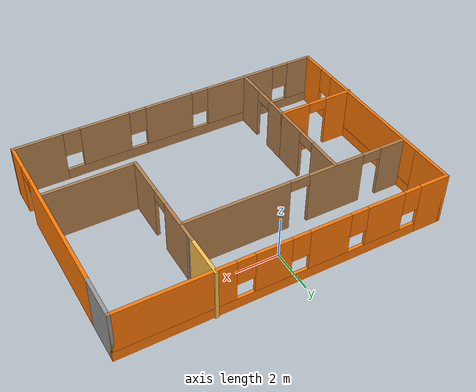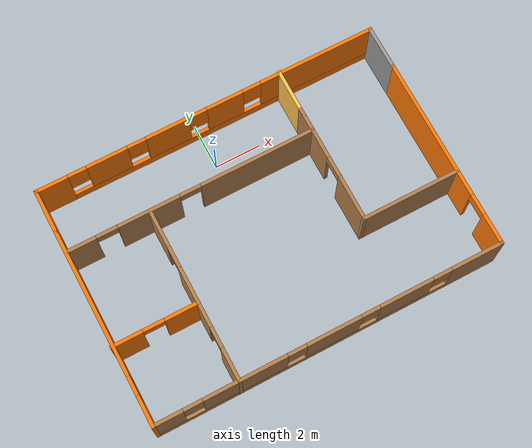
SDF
<?xml version='1.0'?>
<sdf version='1.7'>
  <model name='world_gs_myworld1'>
    <pose>0.436031 -3.56792 0 0 -0 0</pose>
    <link name='Wall_16'>
      <collision name='Wall_16_Collision'>
        <geometry>
          <box>
            <size>4.26521 0.15 2.5</size>
          </box>
        </geometry>
        <pose>0 0 1.25 0 -0 0</pose>
      </collision>
      <visual name='Wall_16_Visual'>
        <pose>0 0 1.25 0 -0 0</pose>
        <geometry>
          <box>
            <size>4.26521 0.15 2.5</size>
          </box>
        </geometry>
        <material>
          <script>
            <uri>file://media/materials/scripts/gazebo.material</uri>
            <name>Gazebo/Wood</name>
          </script>
          <ambient>1 0.764706 0.305882 1</ambient>
        </material>
        <meta>
          <layer>0</layer>
        </meta>
      </visual>
      <pose>5.35386 -1.81608 0 0 -0 3.14159</pose>
    </link>
    <link name='Wall_19'>
      <collision name='Wall_19_Collision'>
        <geometry>
          <box>
            <size>0.15 0.15 2.5</size>
          </box>
        </geometry>
        <pose>0 0 1.25 0 -0 0</pose>
      </collision>
      <visual name='Wall_19_Visual'>
        <pose>0 0 1.25 0 -0 0</pose>
        <geometry>
          <box>
            <size>0.15 0.15 2.5</size>
          </box>
        </geometry>
        <material>
          <script>
            <uri>file://media/materials/scripts/gazebo.material</uri>
            <name>Gazebo/Grey</name>
          </script>
          <ambient>1 1 1 1</ambient>
        </material>
        <meta>
          <layer>0</layer>
        </meta>
      </visual>
      <pose>3.29625 3.03391 0 0 -0 0</pose>
    </link>
    <link name='Wall_22'>
      <pose>3.29625 0.733915 0 0 -0 1.5708</pose>
      <visual name='Wall_22_Visual_0'>
        <pose>-1.61265 0 1.25 0 -0 0</pose>
        <geometry>
          <box>
            <size>2.0247 0.15 2.5</size>
          </box>
        </geometry>
        <material>
          <script>
            <uri>file://media/materials/scripts/gazebo.material</uri>
            <name>Gazebo/Wood</name>
          </script>
          <ambient>1 0.764706 0.305882 1</ambient>
        </material>
        <meta>
          <layer>0</layer>
        </meta>
      </visual>
      <collision name='Wall_22_Collision_0'>
        <geometry>
          <box>
            <size>2.0247 0.15 2.5</size>
          </box>
        </geometry>
        <pose>-1.61265 0 1.25 0 -0 0</pose>
      </collision>
      <visual name='Wall_22_Visual_1'>
        <pose>1.46235 0 1.25 0 -0 0</pose>
        <geometry>
          <box>
            <size>2.3253 0.15 2.5</size>
          </box>
        </geometry>
        <material>
          <script>
            <uri>file://media/materials/scripts/gazebo.material</uri>
            <name>Gazebo/Wood</name>
          </script>
          <ambient>1 0.764706 0.305882 1</ambient>
        </material>
        <meta>
          <layer>0</layer>
        </meta>
      </visual>
      <collision name='Wall_22_Collision_1'>
        <geometry>
          <box>
            <size>2.3253 0.15 2.5</size>
          </box>
        </geometry>
        <pose>1.46235 0 1.25 0 -0 0</pose>
      </collision>
      <visual name='Wall_22_Visual_2'>
        <pose>-0.150304 0 2.25 0 -0 0</pose>
        <geometry>
          <box>
            <size>0.9 0.15 0.5</size>
          </box>
        </geometry>
        <material>
          <script>
            <uri>file://media/materials/scripts/gazebo.material</uri>
            <name>Gazebo/Wood</name>
          </script>
          <ambient>1 0.764706 0.305882 1</ambient>
        </material>
        <meta>
          <layer>0</layer>
        </meta>
      </visual>
      <collision name='Wall_22_Collision_2'>
        <geometry>
          <box>
            <size>0.9 0.15 0.5</size>
          </box>
        </geometry>
        <pose>-0.150304 0 2.25 0 -0 0</pose>
      </collision>
    </link>
    <link name='Wall_24'>
      <pose>-2.03613 2.32931 0 0 -0 0</pose>
      <visual name='Wall_24_Visual_0'>
        <pose>-4.73594 0 1.25 0 -0 0</pose>
        <geometry>
          <box>
            <size>1.27812 0.15 2.5</size>
          </box>
        </geometry>
        <material>
          <script>
            <uri>file://media/materials/scripts/gazebo.material</uri>
            <name>Gazebo/Wood</name>
          </script>
          <ambient>1 0.764706 0.305882 1</ambient>
        </material>
        <meta>
          <layer>0</layer>
        </meta>
      </visual>
      <collision name='Wall_24_Collision_0'>
        <geometry>
          <box>
            <size>1.27812 0.15 2.5</size>
          </box>
        </geometry>
        <pose>-4.73594 0 1.25 0 -0 0</pose>
      </collision>
      <visual name='Wall_24_Visual_1'>
        <pose>-1.85489 0 1.25 0 -0 0</pose>
        <geometry>
          <box>
            <size>2.68398 0.15 2.5</size>
          </box>
        </geometry>
        <material>
          <script>
            <uri>file://media/materials/scripts/gazebo.material</uri>
            <name>Gazebo/Wood</name>
          </script>
          <ambient>1 0.764706 0.305882 1</ambient>
        </material>
        <meta>
          <layer>0</layer>
        </meta>
      </visual>
      <collision name='Wall_24_Collision_1'>
        <geometry>
          <box>
            <size>2.68398 0.15 2.5</size>
          </box>
        </geometry>
        <pose>-1.85489 0 1.25 0 -0 0</pose>
      </collision>
      <visual name='Wall_24_Visual_2'>
        <pose>2.88105 0 1.25 0 -0 0</pose>
        <geometry>
          <box>
            <size>4.9879 0.15 2.5</size>
          </box>
        </geometry>
        <material>
          <script>
            <uri>file://media/materials/scripts/gazebo.material</uri>
            <name>Gazebo/Wood</name>
          </script>
          <ambient>1 0.764706 0.305882 1</ambient>
        </material>
        <meta>
          <layer>0</layer>
        </meta>
      </visual>
      <collision name='Wall_24_Collision_2'>
        <geometry>
          <box>
            <size>4.9879 0.15 2.5</size>
          </box>
        </geometry>
        <pose>2.88105 0 1.25 0 -0 0</pose>
      </collision>
      <visual name='Wall_24_Visual_3'>
        <pose>-3.64688 0 2.25 0 -0 0</pose>
        <geometry>
          <box>
            <size>0.9 0.15 0.5</size>
          </box>
        </geometry>
        <material>
          <script>
            <uri>file://media/materials/scripts/gazebo.material</uri>
            <name>Gazebo/Wood</name>
          </script>
          <ambient>1 0.764706 0.305882 1</ambient>
        </material>
        <meta>
          <layer>0</layer>
        </meta>
      </visual>
      <collision name='Wall_24_Collision_3'>
        <geometry>
          <box>
            <size>0.9 0.15 0.5</size>
          </box>
        </geometry>
        <pose>-3.64688 0 2.25 0 -0 0</pose>
      </collision>
      <visual name='Wall_24_Visual_4'>
        <pose>-0.0629 0 2.25 0 -0 0</pose>
        <geometry>
          <box>
            <size>0.9 0.15 0.5</size>
          </box>
        </geometry>
        <material>
          <script>
            <uri>file://media/materials/scripts/gazebo.material</uri>
            <name>Gazebo/Wood</name>
          </script>
          <ambient>1 0.764706 0.305882 1</ambient>
        </material>
        <meta>
          <layer>0</layer>
        </meta>
      </visual>
      <collision name='Wall_24_Collision_4'>
        <geometry>
          <box>
            <size>0.9 0.15 0.5</size>
          </box>
        </geometry>
        <pose>-0.0629 0 2.25 0 -0 0</pose>
      </collision>
    </link>
    <link name='Wall_26'>
      <pose>-3.84473 0.266086 0 0 -0 -1.5708</pose>
      <visual name='Wall_26_Visual_0'>
        <pose>-1.26772 0 1.25 0 -0 0</pose>
        <geometry>
          <box>
            <size>1.71455 0.15 2.5</size>
          </box>
        </geometry>
        <material>
          <script>
            <uri>file://media/materials/scripts/gazebo.material</uri>
            <name>Gazebo/Wood</name>
          </script>
          <ambient>1 0.764706 0.305882 1</ambient>
        </material>
        <meta>
          <layer>0</layer>
        </meta>
      </visual>
      <collision name='Wall_26_Collision_0'>
        <geometry>
          <box>
            <size>1.71455 0.15 2.5</size>
          </box>
        </geometry>
        <pose>-1.26772 0 1.25 0 -0 0</pose>
      </collision>
      <visual name='Wall_26_Visual_1'>
        <pose>1.30727 0 1.25 0 -0 0</pose>
        <geometry>
          <box>
            <size>1.63545 0.15 2.5</size>
          </box>
        </geometry>
        <material>
          <script>
            <uri>file://media/materials/scripts/gazebo.material</uri>
            <name>Gazebo/Wood</name>
          </script>
          <ambient>1 0.764706 0.305882 1</ambient>
        </material>
        <meta>
          <layer>0</layer>
        </meta>
      </visual>
      <collision name='Wall_26_Collision_1'>
        <geometry>
          <box>
            <size>1.63545 0.15 2.5</size>
          </box>
        </geometry>
        <pose>1.30727 0 1.25 0 -0 0</pose>
      </collision>
      <visual name='Wall_26_Visual_2'>
        <pose>0.03955 0 2.25 0 -0 0</pose>
        <geometry>
          <box>
            <size>0.9 0.15 0.5</size>
          </box>
        </geometry>
        <material>
          <script>
            <uri>file://media/materials/scripts/gazebo.material</uri>
            <name>Gazebo/Wood</name>
          </script>
          <ambient>1 0.764706 0.305882 1</ambient>
        </material>
        <meta>
          <layer>0</layer>
        </meta>
      </visual>
      <collision name='Wall_26_Collision_2'>
        <geometry>
          <box>
            <size>0.9 0.15 0.5</size>
          </box>
        </geometry>
        <pose>0.03955 0 2.25 0 -0 0</pose>
      </collision>
    </link>
    <link name='Wall_27'>
      <pose>-5.64473 -1.78391 0 0 -0 3.14159</pose>
      <visual name='Wall_27_Visual_0'>
        <pose>-1.12353 0 1.25 0 -0 0</pose>
        <geometry>
          <box>
            <size>1.50295 0.15 2.5</size>
          </box>
        </geometry>
        <material>
          <script>
            <uri>file://media/materials/scripts/gazebo.material</uri>
            <name>Gazebo/Grey</name>
          </script>
          <ambient>0.996078 0.47451 0.0196078 1</ambient>
        </material>
        <meta>
          <layer>0</layer>
        </meta>
      </visual>
      <collision name='Wall_27_Collision_0'>
        <geometry>
          <box>
            <size>1.50295 0.15 2.5</size>
          </box>
        </geometry>
        <pose>-1.12353 0 1.25 0 -0 0</pose>
      </collision>
      <visual name='Wall_27_Visual_1'>
        <pose>1.20148 0 1.25 0 -0 0</pose>
        <geometry>
          <box>
            <size>1.34705 0.15 2.5</size>
          </box>
        </geometry>
        <material>
          <script>
            <uri>file://media/materials/scripts/gazebo.material</uri>
            <name>Gazebo/Grey</name>
          </script>
          <ambient>0.996078 0.47451 0.0196078 1</ambient>
        </material>
        <meta>
          <layer>0</layer>
        </meta>
      </visual>
      <collision name='Wall_27_Collision_1'>
        <geometry>
          <box>
            <size>1.34705 0.15 2.5</size>
          </box>
        </geometry>
        <pose>1.20148 0 1.25 0 -0 0</pose>
      </collision>
      <visual name='Wall_27_Visual_2'>
        <pose>0.07795 0 2.25 0 -0 0</pose>
        <geometry>
          <box>
            <size>0.9 0.15 0.5</size>
          </box>
        </geometry>
        <material>
          <script>
            <uri>file://media/materials/scripts/gazebo.material</uri>
            <name>Gazebo/Grey</name>
          </script>
          <ambient>0.996078 0.47451 0.0196078 1</ambient>
        </material>
        <meta>
          <layer>0</layer>
        </meta>
      </visual>
      <collision name='Wall_27_Collision_2'>
        <geometry>
          <box>
            <size>0.9 0.15 0.5</size>
          </box>
        </geometry>
        <pose>0.07795 0 2.25 0 -0 0</pose>
      </collision>
    </link>
    <link name='Wall_29'>
      <pose>-3.84473 -3.45892 0 0 -0 -1.5708</pose>
      <visual name='Wall_29_Visual_0'>
        <pose>-1.1838 0 1.25 0 -0 0</pose>
        <geometry>
          <box>
            <size>1.1324 0.15 2.5</size>
          </box>
        </geometry>
        <material>
          <script>
            <uri>file://media/materials/scripts/gazebo.material</uri>
            <name>Gazebo/Wood</name>
          </script>
          <ambient>1 0.764706 0.305882 1</ambient>
        </material>
        <meta>
          <layer>0</layer>
        </meta>
      </visual>
      <collision name='Wall_29_Collision_0'>
        <geometry>
          <box>
            <size>1.1324 0.15 2.5</size>
          </box>
        </geometry>
        <pose>-1.1838 0 1.25 0 -0 0</pose>
      </collision>
      <visual name='Wall_29_Visual_1'>
        <pose>1.0162 0 1.25 0 -0 0</pose>
        <geometry>
          <box>
            <size>1.4676 0.15 2.5</size>
          </box>
        </geometry>
        <material>
          <script>
            <uri>file://media/materials/scripts/gazebo.material</uri>
            <name>Gazebo/Wood</name>
          </script>
          <ambient>1 0.764706 0.305882 1</ambient>
        </material>
        <meta>
          <layer>0</layer>
        </meta>
      </visual>
      <collision name='Wall_29_Collision_1'>
        <geometry>
          <box>
            <size>1.4676 0.15 2.5</size>
          </box>
        </geometry>
        <pose>1.0162 0 1.25 0 -0 0</pose>
      </collision>
      <visual name='Wall_29_Visual_2'>
        <pose>-0.1676 0 2.25 0 -0 0</pose>
        <geometry>
          <box>
            <size>0.9 0.15 0.5</size>
          </box>
        </geometry>
        <material>
          <script>
            <uri>file://media/materials/scripts/gazebo.material</uri>
            <name>Gazebo/Wood</name>
          </script>
          <ambient>1 0.764706 0.305882 1</ambient>
        </material>
        <meta>
          <layer>0</layer>
        </meta>
      </visual>
      <collision name='Wall_29_Collision_2'>
        <geometry>
          <box>
            <size>0.9 0.15 0.5</size>
          </box>
        </geometry>
        <pose>-0.1676 0 2.25 0 -0 0</pose>
      </collision>
    </link>
    <link name='Wall_31'>
      <collision name='Wall_31_Collision'>
        <geometry>
          <box>
            <size>2 0.15 2.5</size>
          </box>
        </geometry>
        <pose>0 0 1.25 0 -0 0</pose>
      </collision>
      <visual name='Wall_31_Visual'>
        <pose>0 0 1.25 0 -0 0</pose>
        <geometry>
          <box>
            <size>2 0.15 2.5</size>
          </box>
        </geometry>
        <material>
          <script>
            <uri>file://media/materials/scripts/gazebo.material</uri>
            <name>Gazebo/Grey</name>
          </script>
          <ambient>0.996078 0.47451 0.0196078 1</ambient>
        </material>
        <meta>
          <layer>0</layer>
        </meta>
      </visual>
      <pose>-7.40527 4.14633 0 0 -0 1.5708</pose>
    </link>
    <link name='Wall_32'>
      <pose>0.019733 5.07133 0 0 -0 0</pose>
      <visual name='Wall_32_Visual_0'>
        <pose>-6.78815 0 1.25 0 -0 0</pose>
        <geometry>
          <box>
            <size>1.42371 0.15 2.5</size>
          </box>
        </geometry>
        <material>
          <script>
            <uri>file://media/materials/scripts/gazebo.material</uri>
            <name>Gazebo/Grey</name>
          </script>
          <ambient>0.996078 0.47451 0.0196078 1</ambient>
        </material>
        <meta>
          <layer>0</layer>
        </meta>
      </visual>
      <collision name='Wall_32_Collision_0'>
        <geometry>
          <box>
            <size>1.42371 0.15 2.5</size>
          </box>
        </geometry>
        <pose>-6.78815 0 1.25 0 -0 0</pose>
      </collision>
      <visual name='Wall_32_Visual_1'>
        <pose>0.711855 0 0.25 0 -0 0</pose>
        <geometry>
          <box>
            <size>13.5763 0.15 0.5</size>
          </box>
        </geometry>
        <material>
          <script>
            <uri>file://media/materials/scripts/gazebo.material</uri>
            <name>Gazebo/Grey</name>
          </script>
          <ambient>0.996078 0.47451 0.0196078 1</ambient>
        </material>
        <meta>
          <layer>0</layer>
        </meta>
      </visual>
      <collision name='Wall_32_Collision_1'>
        <geometry>
          <box>
            <size>13.5763 0.15 0.5</size>
          </box>
        </geometry>
        <pose>0.711855 0 0.25 0 -0 0</pose>
      </collision>
      <visual name='Wall_32_Visual_2'>
        <pose>-4.38685 0 1.5 0 -0 0</pose>
        <geometry>
          <box>
            <size>1.77887 0.15 2</size>
          </box>
        </geometry>
        <material>
          <script>
            <uri>file://media/materials/scripts/gazebo.material</uri>
            <name>Gazebo/Grey</name>
          </script>
          <ambient>0.996078 0.47451 0.0196078 1</ambient>
        </material>
        <meta>
          <layer>0</layer>
        </meta>
      </visual>
      <collision name='Wall_32_Collision_2'>
        <geometry>
          <box>
            <size>1.77887 0.15 2</size>
          </box>
        </geometry>
        <pose>-4.38685 0 1.5 0 -0 0</pose>
      </collision>
      <visual name='Wall_32_Visual_3'>
        <pose>-1.75508 0 1.5 0 -0 0</pose>
        <geometry>
          <box>
            <size>1.88468 0.15 2</size>
          </box>
        </geometry>
        <material>
          <script>
            <uri>file://media/materials/scripts/gazebo.material</uri>
            <name>Gazebo/Grey</name>
          </script>
          <ambient>0.996078 0.47451 0.0196078 1</ambient>
        </material>
        <meta>
          <layer>0</layer>
        </meta>
      </visual>
      <collision name='Wall_32_Collision_3'>
        <geometry>
          <box>
            <size>1.88468 0.15 2</size>
          </box>
        </geometry>
        <pose>-1.75508 0 1.5 0 -0 0</pose>
      </collision>
      <visual name='Wall_32_Visual_4'>
        <pose>0.790734 0 1.5 0 -0 0</pose>
        <geometry>
          <box>
            <size>1.60695 0.15 2</size>
          </box>
        </geometry>
        <material>
          <script>
            <uri>file://media/materials/scripts/gazebo.material</uri>
            <name>Gazebo/Grey</name>
          </script>
          <ambient>0.996078 0.47451 0.0196078 1</ambient>
        </material>
        <meta>
          <layer>0</layer>
        </meta>
      </visual>
      <collision name='Wall_32_Collision_4'>
        <geometry>
          <box>
            <size>1.60695 0.15 2</size>
          </box>
        </geometry>
        <pose>0.790734 0 1.5 0 -0 0</pose>
      </collision>
      <visual name='Wall_32_Visual_5'>
        <pose>4.9471 0 1.5 0 -0 0</pose>
        <geometry>
          <box>
            <size>5.10579 0.15 2</size>
          </box>
        </geometry>
        <material>
          <script>
            <uri>file://media/materials/scripts/gazebo.material</uri>
            <name>Gazebo/Grey</name>
          </script>
          <ambient>0.996078 0.47451 0.0196078 1</ambient>
        </material>
        <meta>
          <layer>0</layer>
        </meta>
      </visual>
      <collision name='Wall_32_Collision_5'>
        <geometry>
          <box>
            <size>5.10579 0.15 2</size>
          </box>
        </geometry>
        <pose>4.9471 0 1.5 0 -0 0</pose>
      </collision>
      <visual name='Wall_32_Visual_6'>
        <pose>-5.67629 0 1.9 0 -0 0</pose>
        <geometry>
          <box>
            <size>0.8 0.15 1.2</size>
          </box>
        </geometry>
        <material>
          <script>
            <uri>file://media/materials/scripts/gazebo.material</uri>
            <name>Gazebo/Grey</name>
          </script>
          <ambient>0.996078 0.47451 0.0196078 1</ambient>
        </material>
        <meta>
          <layer>0</layer>
        </meta>
      </visual>
      <collision name='Wall_32_Collision_6'>
        <geometry>
          <box>
            <size>0.8 0.15 1.2</size>
          </box>
        </geometry>
        <pose>-5.67629 0 1.9 0 -0 0</pose>
      </collision>
      <visual name='Wall_32_Visual_7'>
        <pose>-3.09742 0 1.9 0 -0 0</pose>
        <geometry>
          <box>
            <size>0.8 0.15 1.2</size>
          </box>
        </geometry>
        <material>
          <script>
            <uri>file://media/materials/scripts/gazebo.material</uri>
            <name>Gazebo/Grey</name>
          </script>
          <ambient>0.996078 0.47451 0.0196078 1</ambient>
        </material>
        <meta>
          <layer>0</layer>
        </meta>
      </visual>
      <collision name='Wall_32_Collision_7'>
        <geometry>
          <box>
            <size>0.8 0.15 1.2</size>
          </box>
        </geometry>
        <pose>-3.09742 0 1.9 0 -0 0</pose>
      </collision>
      <visual name='Wall_32_Visual_8'>
        <pose>-0.412741 0 1.9 0 -0 0</pose>
        <geometry>
          <box>
            <size>0.8 0.15 1.2</size>
          </box>
        </geometry>
        <material>
          <script>
            <uri>file://media/materials/scripts/gazebo.material</uri>
            <name>Gazebo/Grey</name>
          </script>
          <ambient>0.996078 0.47451 0.0196078 1</ambient>
        </material>
        <meta>
          <layer>0</layer>
        </meta>
      </visual>
      <collision name='Wall_32_Collision_8'>
        <geometry>
          <box>
            <size>0.8 0.15 1.2</size>
          </box>
        </geometry>
        <pose>-0.412741 0 1.9 0 -0 0</pose>
      </collision>
      <visual name='Wall_32_Visual_9'>
        <pose>1.99421 0 1.9 0 -0 0</pose>
        <geometry>
          <box>
            <size>0.8 0.15 1.2</size>
          </box>
        </geometry>
        <material>
          <script>
            <uri>file://media/materials/scripts/gazebo.material</uri>
            <name>Gazebo/Grey</name>
          </script>
          <ambient>0.996078 0.47451 0.0196078 1</ambient>
        </material>
        <meta>
          <layer>0</layer>
        </meta>
      </visual>
      <collision name='Wall_32_Collision_9'>
        <geometry>
          <box>
            <size>0.8 0.15 1.2</size>
          </box>
        </geometry>
        <pose>1.99421 0 1.9 0 -0 0</pose>
      </collision>
    </link>
    <link name='Wall_33'>
      <collision name='Wall_33_Collision'>
        <geometry>
          <box>
            <size>2 0.15 2.5</size>
          </box>
        </geometry>
        <pose>0 0 1.25 0 -0 0</pose>
      </collision>
      <visual name='Wall_33_Visual'>
        <pose>0 0 1.25 0 -0 0</pose>
        <geometry>
          <box>
            <size>2 0.15 2.5</size>
          </box>
        </geometry>
        <material>
          <script>
            <uri>file://media/materials/scripts/gazebo.material</uri>
            <name>Gazebo/Grey</name>
          </script>
          <ambient>1 1 1 1</ambient>
        </material>
        <meta>
          <layer>0</layer>
        </meta>
      </visual>
      <pose>7.44473 4.14633 0 0 -0 -1.5708</pose>
    </link>
    <link name='Wall_35'>
      <collision name='Wall_35_Collision'>
        <geometry>
          <box>
            <size>2 0.15 2.5</size>
          </box>
        </geometry>
        <pose>0 0 1.25 0 -0 0</pose>
      </collision>
      <visual name='Wall_35_Visual'>
        <pose>0 0 1.25 0 -0 0</pose>
        <geometry>
          <box>
            <size>2 0.15 2.5</size>
          </box>
        </geometry>
        <material>
          <script>
            <uri>file://media/materials/scripts/gazebo.material</uri>
            <name>Gazebo/Grey</name>
          </script>
          <ambient>1 0.764706 0.305882 1</ambient>
        </material>
        <meta>
          <layer>0</layer>
        </meta>
      </visual>
      <pose>3.29625 4.20892 0 0 -0 1.5708</pose>
    </link>
    <link name='Wall_5'>
      <pose>7.44473 -0.953666 0 0 -0 -1.5708</pose>
      <visual name='Wall_5_Visual_0'>
        <pose>-1.13489 0 1.25 0 -0 0</pose>
        <geometry>
          <box>
            <size>6.23022 0.15 2.5</size>
          </box>
        </geometry>
        <material>
          <script>
            <uri>file://media/materials/scripts/gazebo.material</uri>
            <name>Gazebo/Grey</name>
          </script>
          <ambient>0.996078 0.47451 0.0196078 1</ambient>
        </material>
        <meta>
          <layer>0</layer>
        </meta>
      </visual>
      <collision name='Wall_5_Collision_0'>
        <geometry>
          <box>
            <size>6.23022 0.15 2.5</size>
          </box>
        </geometry>
        <pose>-1.13489 0 1.25 0 -0 0</pose>
      </collision>
      <visual name='Wall_5_Visual_1'>
        <pose>3.56511 0 1.25 0 -0 0</pose>
        <geometry>
          <box>
            <size>1.36978 0.15 2.5</size>
          </box>
        </geometry>
        <material>
          <script>
            <uri>file://media/materials/scripts/gazebo.material</uri>
            <name>Gazebo/Grey</name>
          </script>
          <ambient>0.996078 0.47451 0.0196078 1</ambient>
        </material>
        <meta>
          <layer>0</layer>
        </meta>
      </visual>
      <collision name='Wall_5_Collision_1'>
        <geometry>
          <box>
            <size>1.36978 0.15 2.5</size>
          </box>
        </geometry>
        <pose>3.56511 0 1.25 0 -0 0</pose>
      </collision>
      <visual name='Wall_5_Visual_2'>
        <pose>2.43022 0 2.25 0 -0 0</pose>
        <geometry>
          <box>
            <size>0.9 0.15 0.5</size>
          </box>
        </geometry>
        <material>
          <script>
            <uri>file://media/materials/scripts/gazebo.material</uri>
            <name>Gazebo/Grey</name>
          </script>
          <ambient>0.996078 0.47451 0.0196078 1</ambient>
        </material>
        <meta>
          <layer>0</layer>
        </meta>
      </visual>
      <collision name='Wall_5_Collision_2'>
        <geometry>
          <box>
            <size>0.9 0.15 0.5</size>
          </box>
        </geometry>
        <pose>2.43022 0 2.25 0 -0 0</pose>
      </collision>
    </link>
    <link name='Wall_6'>
      <pose>0.019733 -5.12867 0 0 -0 3.14159</pose>
      <visual name='Wall_6_Visual_0'>
        <pose>-6.36218 0 1.25 0 -0 0</pose>
        <geometry>
          <box>
            <size>2.27564 0.15 2.5</size>
          </box>
        </geometry>
        <material>
          <script>
            <uri>file://media/materials/scripts/gazebo.material</uri>
            <name>Gazebo/Wood</name>
          </script>
          <ambient>1 0.764706 0.305882 1</ambient>
        </material>
        <meta>
          <layer>0</layer>
        </meta>
      </visual>
      <collision name='Wall_6_Collision_0'>
        <geometry>
          <box>
            <size>2.27564 0.15 2.5</size>
          </box>
        </geometry>
        <pose>-6.36218 0 1.25 0 -0 0</pose>
      </collision>
      <visual name='Wall_6_Visual_1'>
        <pose>1.13782 0 0.25 0 -0 0</pose>
        <geometry>
          <box>
            <size>12.7244 0.15 0.5</size>
          </box>
        </geometry>
        <material>
          <script>
            <uri>file://media/materials/scripts/gazebo.material</uri>
            <name>Gazebo/Wood</name>
          </script>
          <ambient>1 0.764706 0.305882 1</ambient>
        </material>
        <meta>
          <layer>0</layer>
        </meta>
      </visual>
      <collision name='Wall_6_Collision_1'>
        <geometry>
          <box>
            <size>12.7244 0.15 0.5</size>
          </box>
        </geometry>
        <pose>1.13782 0 0.25 0 -0 0</pose>
      </collision>
      <visual name='Wall_6_Visual_2'>
        <pose>-3.26381 0 1.5 0 -0 0</pose>
        <geometry>
          <box>
            <size>2.3211 0.15 2</size>
          </box>
        </geometry>
        <material>
          <script>
            <uri>file://media/materials/scripts/gazebo.material</uri>
            <name>Gazebo/Wood</name>
          </script>
          <ambient>1 0.764706 0.305882 1</ambient>
        </material>
        <meta>
          <layer>0</layer>
        </meta>
      </visual>
      <collision name='Wall_6_Collision_2'>
        <geometry>
          <box>
            <size>2.3211 0.15 2</size>
          </box>
        </geometry>
        <pose>-3.26381 0 1.5 0 -0 0</pose>
      </collision>
      <visual name='Wall_6_Visual_3'>
        <pose>-0.129484 0 1.5 0 -0 0</pose>
        <geometry>
          <box>
            <size>2.34755 0.15 2</size>
          </box>
        </geometry>
        <material>
          <script>
            <uri>file://media/materials/scripts/gazebo.material</uri>
            <name>Gazebo/Wood</name>
          </script>
          <ambient>1 0.764706 0.305882 1</ambient>
        </material>
        <meta>
          <layer>0</layer>
        </meta>
      </visual>
      <collision name='Wall_6_Collision_3'>
        <geometry>
          <box>
            <size>2.34755 0.15 2</size>
          </box>
        </geometry>
        <pose>-0.129484 0 1.5 0 -0 0</pose>
      </collision>
      <visual name='Wall_6_Visual_4'>
        <pose>3.6198 0 1.5 0 -0 0</pose>
        <geometry>
          <box>
            <size>3.55103 0.15 2</size>
          </box>
        </geometry>
        <material>
          <script>
            <uri>file://media/materials/scripts/gazebo.material</uri>
            <name>Gazebo/Wood</name>
          </script>
          <ambient>1 0.764706 0.305882 1</ambient>
        </material>
        <meta>
          <layer>0</layer>
        </meta>
      </visual>
      <collision name='Wall_6_Collision_4'>
        <geometry>
          <box>
            <size>3.55103 0.15 2</size>
          </box>
        </geometry>
        <pose>3.6198 0 1.5 0 -0 0</pose>
      </collision>
      <visual name='Wall_6_Visual_5'>
        <pose>6.84766 0 1.5 0 -0 0</pose>
        <geometry>
          <box>
            <size>1.30468 0.15 2</size>
          </box>
        </geometry>
        <material>
          <script>
            <uri>file://media/materials/scripts/gazebo.material</uri>
            <name>Gazebo/Wood</name>
          </script>
          <ambient>1 0.764706 0.305882 1</ambient>
        </material>
        <meta>
          <layer>0</layer>
        </meta>
      </visual>
      <collision name='Wall_6_Collision_5'>
        <geometry>
          <box>
            <size>1.30468 0.15 2</size>
          </box>
        </geometry>
        <pose>6.84766 0 1.5 0 -0 0</pose>
      </collision>
      <visual name='Wall_6_Visual_6'>
        <pose>-4.82436 0 1.9 0 -0 0</pose>
        <geometry>
          <box>
            <size>0.8 0.15 1.2</size>
          </box>
        </geometry>
        <material>
          <script>
            <uri>file://media/materials/scripts/gazebo.material</uri>
            <name>Gazebo/Wood</name>
          </script>
          <ambient>1 0.764706 0.305882 1</ambient>
        </material>
        <meta>
          <layer>0</layer>
        </meta>
      </visual>
      <collision name='Wall_6_Collision_6'>
        <geometry>
          <box>
            <size>0.8 0.15 1.2</size>
          </box>
        </geometry>
        <pose>-4.82436 0 1.9 0 -0 0</pose>
      </collision>
      <visual name='Wall_6_Visual_7'>
        <pose>-1.70326 0 1.9 0 -0 0</pose>
        <geometry>
          <box>
            <size>0.8 0.15 1.2</size>
          </box>
        </geometry>
        <material>
          <script>
            <uri>file://media/materials/scripts/gazebo.material</uri>
            <name>Gazebo/Wood</name>
          </script>
          <ambient>1 0.764706 0.305882 1</ambient>
        </material>
        <meta>
          <layer>0</layer>
        </meta>
      </visual>
      <collision name='Wall_6_Collision_7'>
        <geometry>
          <box>
            <size>0.8 0.15 1.2</size>
          </box>
        </geometry>
        <pose>-1.70326 0 1.9 0 -0 0</pose>
      </collision>
      <visual name='Wall_6_Visual_8'>
        <pose>1.44429 0 1.9 0 -0 0</pose>
        <geometry>
          <box>
            <size>0.8 0.15 1.2</size>
          </box>
        </geometry>
        <material>
          <script>
            <uri>file://media/materials/scripts/gazebo.material</uri>
            <name>Gazebo/Wood</name>
          </script>
          <ambient>1 0.764706 0.305882 1</ambient>
        </material>
        <meta>
          <layer>0</layer>
        </meta>
      </visual>
      <collision name='Wall_6_Collision_8'>
        <geometry>
          <box>
            <size>0.8 0.15 1.2</size>
          </box>
        </geometry>
        <pose>1.44429 0 1.9 0 -0 0</pose>
      </collision>
      <visual name='Wall_6_Visual_9'>
        <pose>5.79532 0 1.9 0 -0 0</pose>
        <geometry>
          <box>
            <size>0.8 0.15 1.2</size>
          </box>
        </geometry>
        <material>
          <script>
            <uri>file://media/materials/scripts/gazebo.material</uri>
            <name>Gazebo/Wood</name>
          </script>
          <ambient>1 0.764706 0.305882 1</ambient>
        </material>
        <meta>
          <layer>0</layer>
        </meta>
      </visual>
      <collision name='Wall_6_Collision_9'>
        <geometry>
          <box>
            <size>0.8 0.15 1.2</size>
          </box>
        </geometry>
        <pose>5.79532 0 1.9 0 -0 0</pose>
      </collision>
    </link>
    <link name='Wall_7'>
      <pose>-7.40527 -0.953666 0 0 -0 1.5708</pose>
      <visual name='Wall_7_Visual_0'>
        <pose>-3.57979 0 1.25 0 -0 0</pose>
        <geometry>
          <box>
            <size>1.34043 0.15 2.5</size>
          </box>
        </geometry>
        <material>
          <script>
            <uri>file://media/materials/scripts/gazebo.material</uri>
            <name>Gazebo/Grey</name>
          </script>
          <ambient>0.996078 0.47451 0.0196078 1</ambient>
        </material>
        <meta>
          <layer>0</layer>
        </meta>
      </visual>
      <collision name='Wall_7_Collision_0'>
        <geometry>
          <box>
            <size>1.34043 0.15 2.5</size>
          </box>
        </geometry>
        <pose>-3.57979 0 1.25 0 -0 0</pose>
      </collision>
      <visual name='Wall_7_Visual_1'>
        <pose>0.670213 0 0.25 0 -0 0</pose>
        <geometry>
          <box>
            <size>7.15957 0.15 0.5</size>
          </box>
        </geometry>
        <material>
          <script>
            <uri>file://media/materials/scripts/gazebo.material</uri>
            <name>Gazebo/Grey</name>
          </script>
          <ambient>0.996078 0.47451 0.0196078 1</ambient>
        </material>
        <meta>
          <layer>0</layer>
        </meta>
      </visual>
      <collision name='Wall_7_Collision_1'>
        <geometry>
          <box>
            <size>7.15957 0.15 0.5</size>
          </box>
        </geometry>
        <pose>0.670213 0 0.25 0 -0 0</pose>
      </collision>
      <visual name='Wall_7_Visual_2'>
        <pose>1.07021 0 1.5 0 -0 0</pose>
        <geometry>
          <box>
            <size>6.35957 0.15 2</size>
          </box>
        </geometry>
        <material>
          <script>
            <uri>file://media/materials/scripts/gazebo.material</uri>
            <name>Gazebo/Grey</name>
          </script>
          <ambient>0.996078 0.47451 0.0196078 1</ambient>
        </material>
        <meta>
          <layer>0</layer>
        </meta>
      </visual>
      <collision name='Wall_7_Collision_2'>
        <geometry>
          <box>
            <size>6.35957 0.15 2</size>
          </box>
        </geometry>
        <pose>1.07021 0 1.5 0 -0 0</pose>
      </collision>
      <visual name='Wall_7_Visual_3'>
        <pose>-2.50957 0 1.9 0 -0 0</pose>
        <geometry>
          <box>
            <size>0.8 0.15 1.2</size>
          </box>
        </geometry>
        <material>
          <script>
            <uri>file://media/materials/scripts/gazebo.material</uri>
            <name>Gazebo/Grey</name>
          </script>
          <ambient>0.996078 0.47451 0.0196078 1</ambient>
        </material>
        <meta>
          <layer>0</layer>
        </meta>
      </visual>
      <collision name='Wall_7_Collision_3'>
        <geometry>
          <box>
            <size>0.8 0.15 1.2</size>
          </box>
        </geometry>
        <pose>-2.50957 0 1.9 0 -0 0</pose>
      </collision>
    </link>
    <static>1</static>
  </model>
</sdf>
